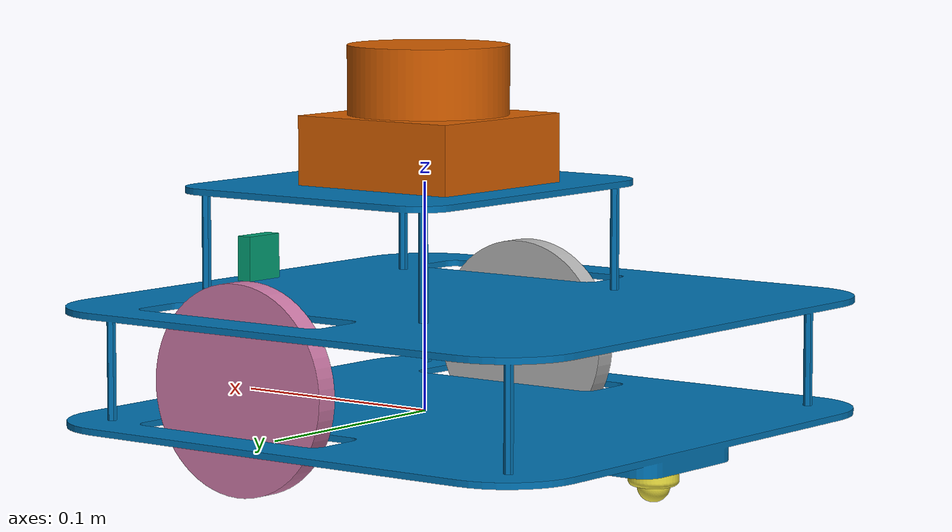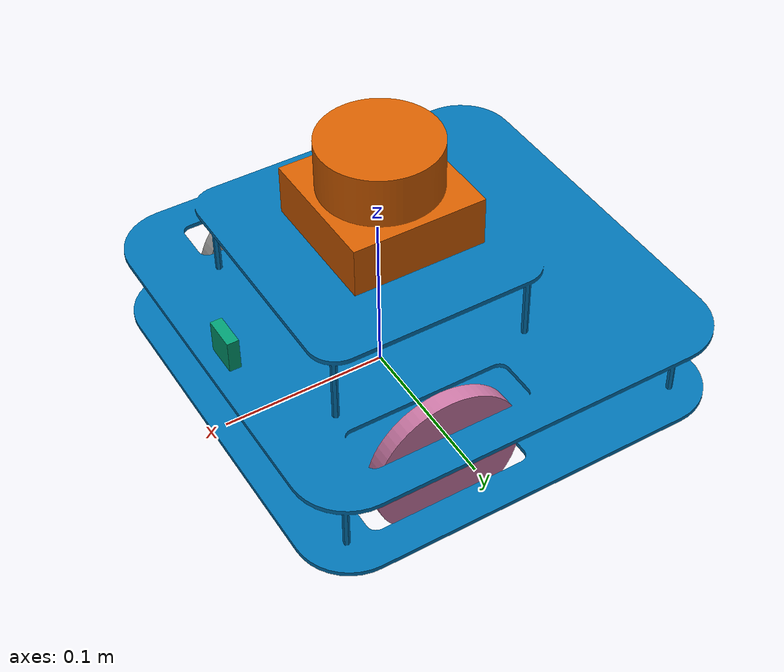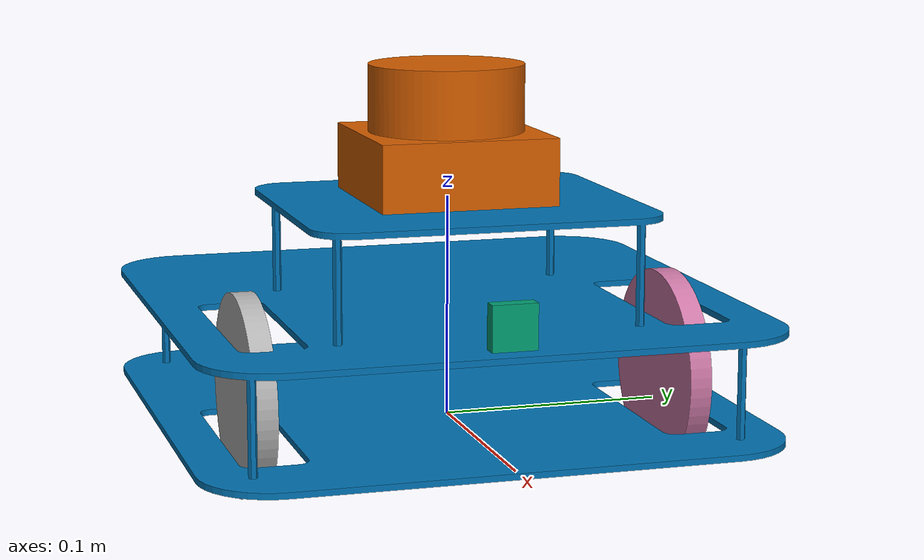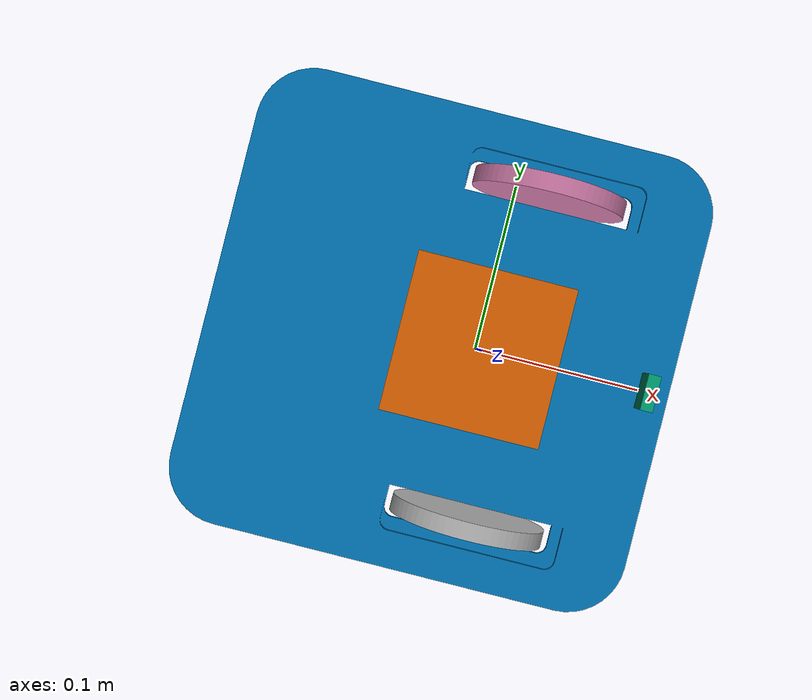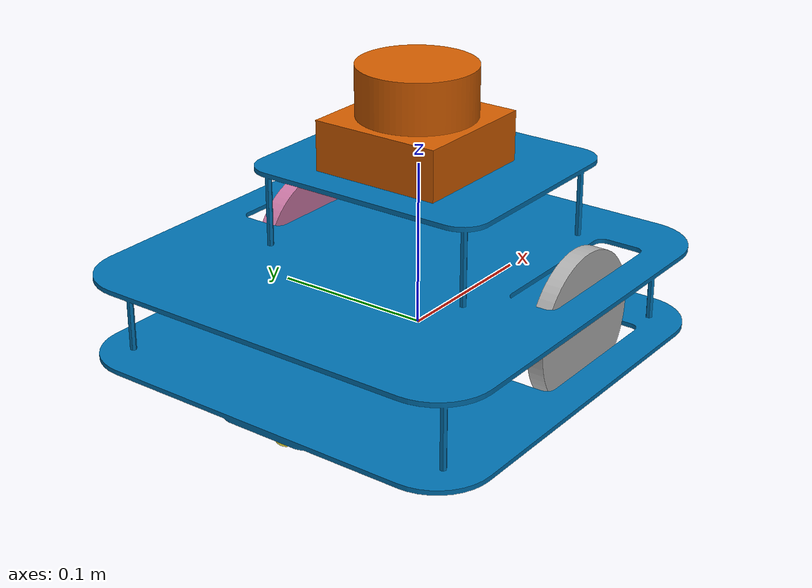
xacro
<?xml version="1.0"?>
<robot xmlns:xacro="http://www.ros.org/wiki/xacro"  name="robot">

    <xacro:include filename="robot_core.xacro"/>
    <xacro:include filename="ros2_control.xacro"/>

</robot>

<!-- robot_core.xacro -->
<robot xmlns:xacro="http://www.ros.org/wiki/xacro">

    <link name="base_link">
    </link>

    <link name="base_footprint">
    </link>

    <link name="camera_link">
      <inertial>
        <origin xyz="0 0 0" rpy="0 0 0"/>
        <mass value="2.0"/>
        <inertia ixx="1.25714" ixy="0" ixz="0" iyy="0.71958" iyz="0" izz="0.71958"/>
      </inertial>
      <visual name="camera">
        <origin xyz="0 0 0" rpy="0 0 0"/>
        <geometry>
          <mesh filename="file:///home/dev/dev_ws/install/rover/share/rover/meshes/stl/Cube.006.stl" scale="1.0 1.0 1.0"/>
        </geometry>
      </visual>
      <collision name="camera">
        <origin xyz="0 0 0" rpy="0 0 -3.14159"/>
        <geometry>
          <mesh filename="file:///home/dev/dev_ws/install/rover/share/rover/meshes/stl/Cube.028.stl" scale="1.0 1.0 1.0"/>
        </geometry>
      </collision>
    </link>

    <link name="caster_link">
      <inertial>
        <origin xyz="0 0 0" rpy="0 0 0"/>
        <mass value="1.0"/>
        <inertia ixx="2e-05" ixy="0" ixz="0" iyy="2e-05" iyz="0" izz="2e-05"/>
      </inertial>
      <visual name="caster">
        <origin xyz="0 0 0" rpy="0 0 0"/>
        <geometry>
          <mesh filename="file:///home/dev/dev_ws/install/rover/share/rover/meshes/stl/CasterBallWheel001.stl" scale="1.0 1.0 1.0"/>
        </geometry>
      </visual>
      <collision name="caster">
        <origin xyz="0 0 -0.00023" rpy="0 0 -3.14159"/>
        <geometry>
          <mesh filename="file:///home/dev/dev_ws/install/rover/share/rover/meshes/stl/CasterBallWheel001.002.stl" scale="1.0 1.0 1.0"/>
        </geometry>
      </collision>
    </link>

    <link name="chassis_link">
      <inertial>
        <origin xyz="-0.00047 0 -0.00023" rpy="0 0 0"/>
        <mass value="2.0"/>
        <inertia ixx="83.98086" ixy="0" ixz="0" iyy="93.54912" iyz="0" izz="149.48003"/>
      </inertial>
      <visual name="chassis_link">
        <origin xyz="0 0 0" rpy="0 0 0"/>
        <geometry>
          <mesh filename="file:///home/dev/dev_ws/install/rover/share/rover/meshes/stl/Cube.005.stl" scale="1.0 1.0 1.0"/>
        </geometry>
      </visual>
      <collision name="chassis_link">
        <origin xyz="-0.00047 0 -0.00023" rpy="0 0 -3.14159"/>
        <geometry>
          <mesh filename="file:///home/dev/dev_ws/install/rover/share/rover/meshes/stl/Cube.027.stl" scale="1.0 1.0 1.0"/>
        </geometry>
      </collision>
    </link>

    <link name="laser_frame">
      <inertial>
        <origin xyz="-0.00026 0 -0.00026" rpy="0 0 0"/>
        <mass value="2.0"/>
        <inertia ixx="18.59151" ixy="0" ixz="0" iyy="18.59446" iyz="0" izz="17.12676"/>
      </inertial>
      <visual name="lidar">
        <origin xyz="0 0 0" rpy="0 0 0"/>
        <geometry>
          <mesh filename="file:///home/dev/dev_ws/install/rover/share/rover/meshes/stl/Cube.007.stl" scale="1.0 1.0 1.0"/>
        </geometry>
      </visual>
      <collision name="lidar">
        <origin xyz="-0.00052 0 0" rpy="0 0 -3.14159"/>
        <geometry>
          <mesh filename="file:///home/dev/dev_ws/install/rover/share/rover/meshes/stl/Cube.029.stl" scale="1.0 1.0 1.0"/>
        </geometry>
      </collision>
    </link>

    <link name="wheel_left_link">
      <inertial>
        <origin xyz="0 0 0" rpy="0 0 0"/>
        <mass value="2.0"/>
        <inertia ixx="12.23232" ixy="0" ixz="0" iyy="2e-05" iyz="0" izz="2e-05"/>
      </inertial>
      <visual name="wheel_left">
        <origin xyz="0 0 0" rpy="0 0 0"/>
        <geometry>
          <mesh filename="file:///home/dev/dev_ws/install/rover/share/rover/meshes/stl/Cylinder.004.stl" scale="1.0 1.0 1.0"/>
        </geometry>
      </visual>
      <collision name="wheel_left">
        <origin xyz="0 0 0" rpy="0 0 -3.14159"/>
        <geometry>
          <mesh filename="file:///home/dev/dev_ws/install/rover/share/rover/meshes/stl/Cylinder.011.stl" scale="1.0 1.0 1.0"/>
        </geometry>
      </collision>
    </link>

    <link name="wheel_right_link">
      <inertial>
        <origin xyz="0 0 0" rpy="0 0 0"/>
        <mass value="2.0"/>
        <inertia ixx="12.23224" ixy="0" ixz="0" iyy="2e-05" iyz="0" izz="2e-05"/>
      </inertial>
      <visual name="wheel_right">
        <origin xyz="0 0 0" rpy="0 0 0"/>
        <geometry>
          <mesh filename="file:///home/dev/dev_ws/install/rover/share/rover/meshes/stl/Cylinder.001.stl" scale="1.0 1.0 1.0"/>
        </geometry>
      </visual>
      <collision name="wheel_right">
        <origin xyz="0 0 0" rpy="0 0 -3.14159"/>
        <geometry>
          <mesh filename="file:///home/dev/dev_ws/install/rover/share/rover/meshes/stl/Cylinder.013.stl" scale="1.0 1.0 1.0"/>
        </geometry>
      </collision>
    </link>

    <joint name="base_footprint_joint" type="fixed">
        <parent link="base_link"/>
        <child link="base_footprint"/>
        <origin xyz="0 0 0" rpy="0 0 0"/>
    </joint>

    <joint name="chassis_joint" type="fixed">
        <parent link="base_link"/>
        <child link="chassis_link"/>
        <origin xyz="0 0 0" />
    </joint>

    <joint name="camera_joint" type="fixed">
      <origin xyz="0.09505 0 0.06038" rpy="0 0 0"/>
      <parent link="chassis_link"/>
      <child link="camera_link"/>
    </joint>

    <joint name="caster_joint" type="fixed">
      <origin xyz="-0.12115 0 -0.01063" rpy="0 0 0"/>
      <parent link="chassis_link"/>
      <child link="caster_link"/>
    </joint>

    <joint name="laser_joint" type="fixed">
      <origin xyz="-0.00198 0 0.14437" rpy="0 0 0"/>
      <parent link="chassis_link"/>
      <child link="laser_frame"/>
    </joint>

    <joint name="wheel_left_joint" type="continuous">
      <origin xyz="0.01871 0.09783 0.01952" rpy="0 0 0"/>
      <parent link="chassis_link"/>
      <child link="wheel_left_link"/>
      <axis xyz="0 1.0 0"/>
      <limit effort="0" velocity="0"/>
    </joint>

    <joint name="wheel_right_joint" type="continuous">
      <origin xyz="0.01871 -0.09721 0.01952" rpy="-${pi} 0 0"/>
      <parent link="chassis_link"/>
      <child link="wheel_right_link"/>
      <axis xyz="0 -1.0 0"/>
      <limit effort="0" velocity="0"/>
    </joint>

</robot>
